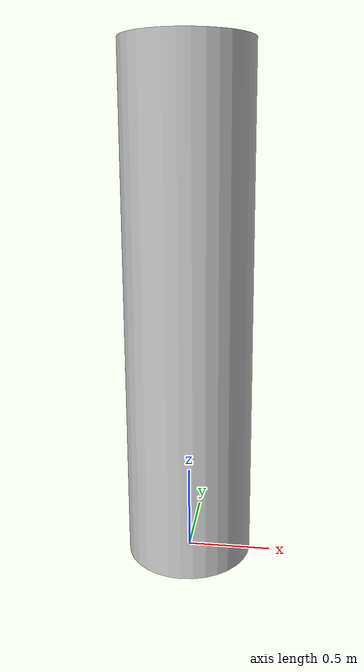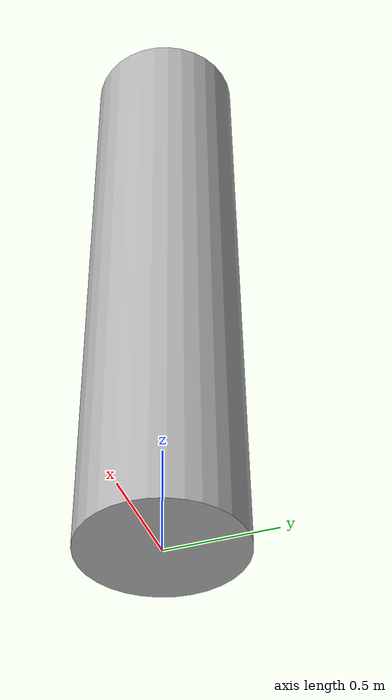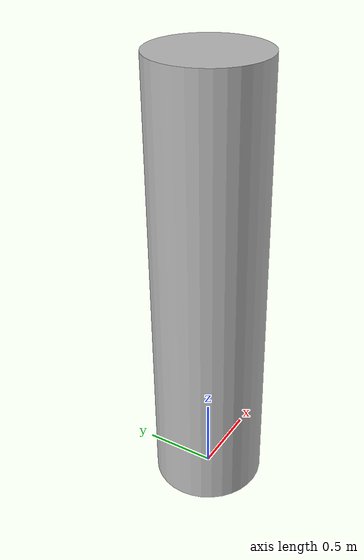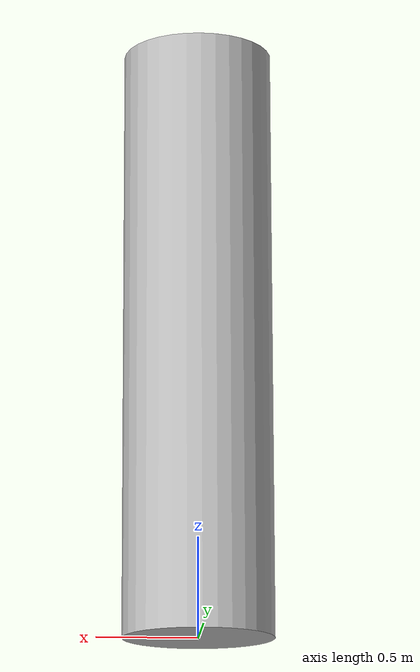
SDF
<?xml version="1.0"?>
<sdf version="1.5">
    <model name="cylinder_075">
        <static>true</static>
        <link name="link">
            <collision name="collision1">
                <pose>0 0 0 0 0 0</pose>
                <geometry>
                    <mesh>
                        <uri>model://cylinder_0.75/meshes/cylinder_0_75.stl</uri>
                    </mesh>
                </geometry>
            </collision>
            <visual name="visual1">

              <pose>0 0 0 0 0 0</pose>
              <geometry>
              <mesh>
                 <uri>model://cylinder_0.75/meshes/cylinder_0_75.dae</uri>
              </mesh>
              </geometry>
            </visual>

        </link>
    </model>
</sdf>
